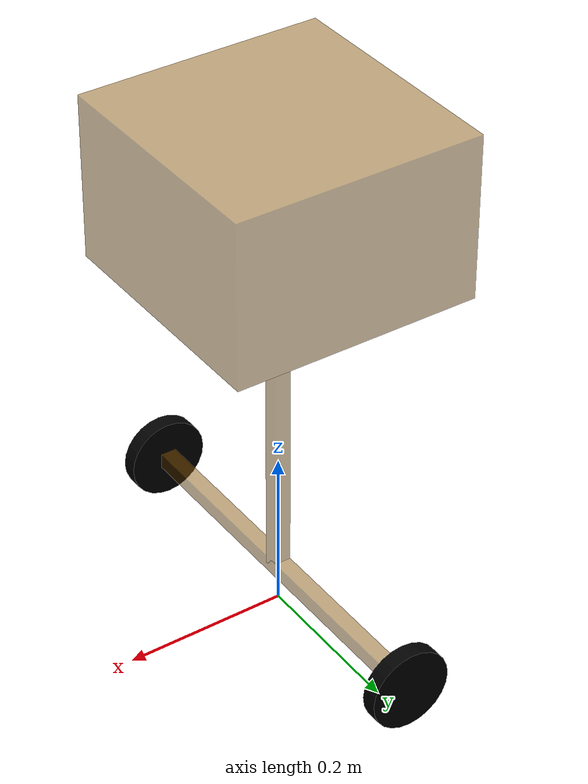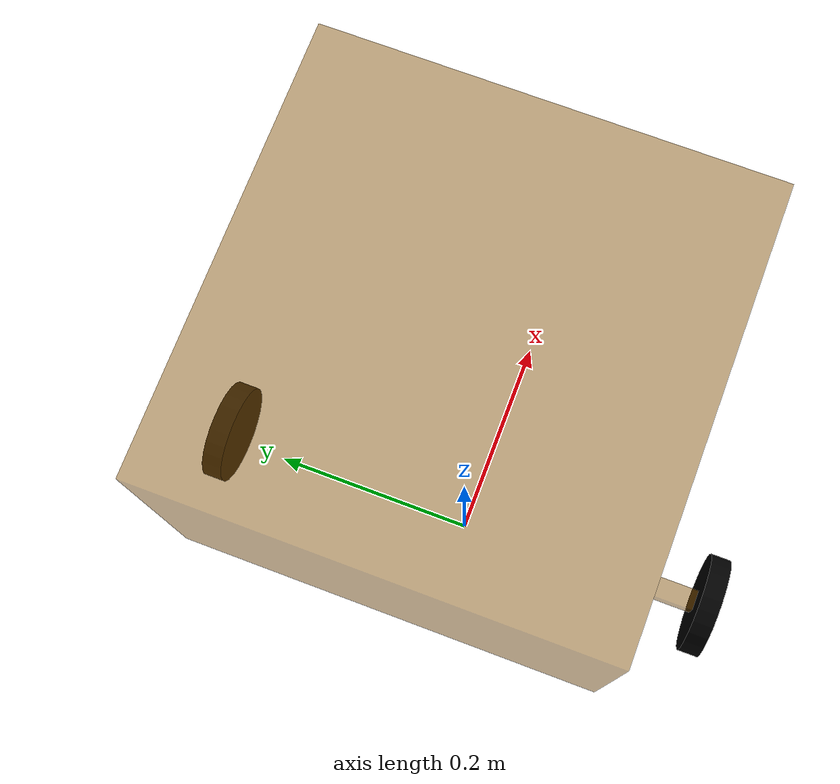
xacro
<!-- 根标签，必须声明 xmlns:xacro -->
<robot name="my_base" xmlns:xacro="http://www.ros.org/wiki/xacro">
    <!-- 封装变量、常量 -->
    <!-- PI 值设置精度需要高一些，否则后续车轮翻转量计算时，可能会出现肉眼不能察觉的车轮倾斜，从而导致模型抖动 -->
    <xacro:property name="PI" value="3.1415926"/>
    <!-- 宏:黑色设置 -->

    <material name="black">
        <color rgba="0.0 0.0 0.0 1.0" />
    </material>

    <!-- 底盘属性 -->
    <xacro:property name="base_footprint_radius" value="0.001" /> <!-- base_footprint 半径  -->
    <xacro:property name="base_link_m" value="0.05" /> <!-- 质量  -->

    <!-- 驱动轮 -->
    <!-- 驱动轮属性 -->
    <xacro:property name="wheel_radius" value="0.05" /><!-- 半径 -->
    <xacro:property name="wheel_length" value="0.02" /><!-- 宽度 -->
    <xacro:property name="wheel_m" value="0.8" /> <!-- 质量  -->

    <!-- 底盘 -->
    <link name="base_footprint">
      <visual>
        <geometry>
          <sphere radius="${base_footprint_radius}" />
        </geometry>
      </visual>
    </link>

    <link name="base_link">
      <visual>
        <geometry>
          <box size="0.02 0.5 0.02"/>
        </geometry>
        <origin xyz="0 0 0" rpy="0 0 0" />
        <material name="yellow">
          <color rgba="0.5 0.3 0.0 0.5" />
        </material>
      </visual>
      <collision>
        <geometry>
          <box size="0.02 0.5 0.02"/>
        </geometry>
        <origin xyz="0 0 0" rpy="0 0 0" />
      </collision>
      <inertial>
        <xacro:Box_inertial_matrix m="0.01" w="0.02" h="0.5" l = "0.02" />
      </inertial>
    </link>

    <joint name="base_link2base_footprint" type="fixed">
      <parent link="base_footprint" />
      <child link="base_link" />
      <origin xyz="0 0 ${wheel_radius}" />
    </joint>
    <gazebo reference="base_link">
        <material>Gazebo/Yellow</material>
    </gazebo>

    <link name="vertical_link">
      <visual>
        <geometry>
         <box size="0.02 0.02 0.5"/>
        </geometry>
        <origin xyz="0 0 0" rpy="0 0 0" />
        <material name="yellow">
          <color rgba="0.5 0.3 0.0 0.5" />
        </material>
      </visual>
      <collision>
        <geometry>
          <box size="0.02 0.02 0.5"/>
        </geometry>
        <origin xyz="0 0 0" rpy="0 0 0" />
      </collision>
      <inertial>
        <!-- 这里给了杆一个质量，为了控制的时候考虑这部分内容。 -->
        <xacro:Box_inertial_matrix m="0.5" w="0.02" h="0.02" l = "0.5" />
      </inertial>
    </link>

    <joint name="base2vertial_link" type="fixed">
      <parent link="base_link" />
      <child link="vertical_link" />
      <origin xyz="0 0 0.25" />
    </joint>
    <gazebo reference="vertical_link">
        <material>Gazebo/Yellow</material>
    </gazebo>

    <!-- 驱动轮宏实现 -->
    <xacro:macro name="add_wheels" params="name flag">
      <link name="${name}_wheel">
        <visual>
          <geometry>
            <cylinder radius="${wheel_radius}" length="${wheel_length}" />
          </geometry>
          <origin xyz="0.0 0.0 0.0" rpy="${PI / 2} 0.0 0.0" />
          <material name="black" />
        </visual>
        <collision>
          <geometry>
            <cylinder radius="${wheel_radius}" length="${wheel_length}" />
          </geometry>
          <origin xyz="0.0 0.0 0.0" rpy="${PI / 2} 0.0 0.0" />
        </collision>
        <xacro:cylinder_inertial_matrix m="${wheel_m}" r="${wheel_radius}" h="${wheel_length}" />

      </link>

      <joint name="${name}_wheel_joint" type="continuous">
        <parent link="base_link" />
        <child link="${name}_wheel" />
        <origin xyz="0 ${flag *0.25} 0 " />
        <axis xyz="0 1 0" />
      </joint>

      <gazebo reference="${name}_wheel">
        <material>Gazebo/Black</material>
      </gazebo>

    </xacro:macro>

    <xacro:add_wheels name="left" flag="1" />
    <xacro:add_wheels name="right" flag="-1" />

    <link name="mass_link">
      <visual>
        <geometry>
         <box size="0.3 0.3 0.2"/>
        </geometry>
        <origin xyz="0 0 0" rpy="0 0 0" />
        <material name="yellow">
          <color rgba="0.5 0.3 0.0 0.5" />
        </material>
      </visual>
      <collision>
        <geometry>
          <box size="0.3 0.3 0.2"/>
        </geometry>
        <origin xyz="0 0 0" rpy="0 0 0" />
      </collision>
      <inertial>
        <xacro:Box_inertial_matrix m="10" w="0.3" h="0.3" l = "0.2" />
      </inertial>
    </link>

    <joint name="mass2vertial_joint" type="revolute">
      <parent link="vertical_link" />
      <child link="mass_link" />
      <origin xyz="0 0 0.25" />
      <axis xyz = "0 1 0"/>
      <limit lower="-1.57" upper="1.57" effort="50" velocity="20.0"/>
    </joint>

    <gazebo reference="mass_link">
        <material>Gazebo/Red</material>
    </gazebo>

</robot>
